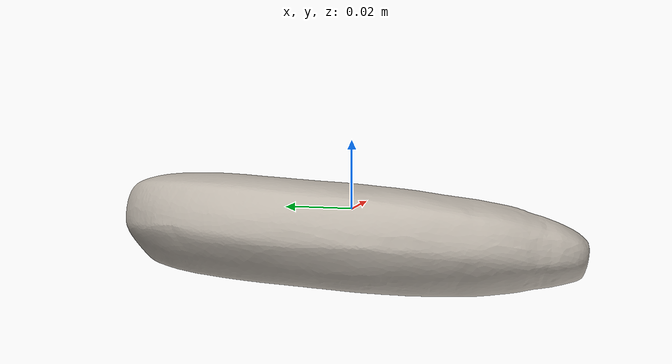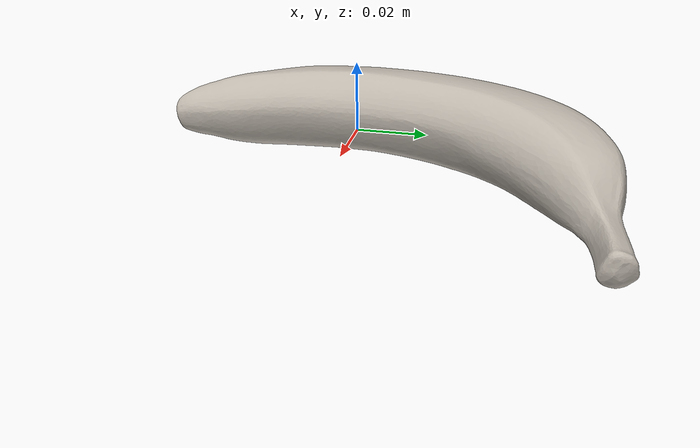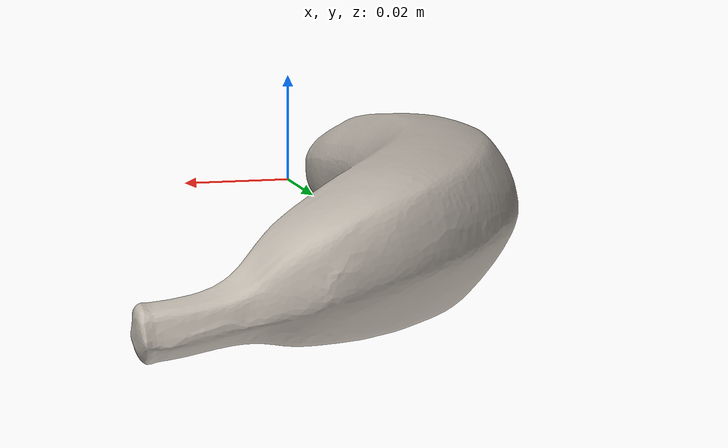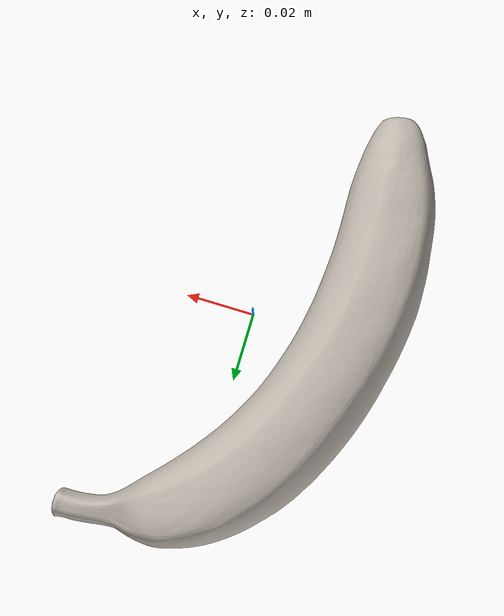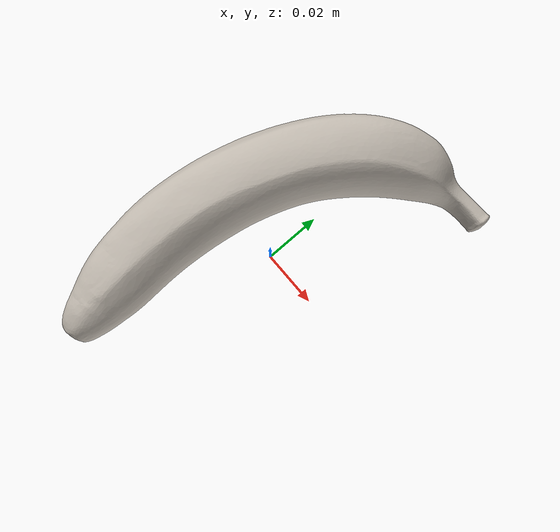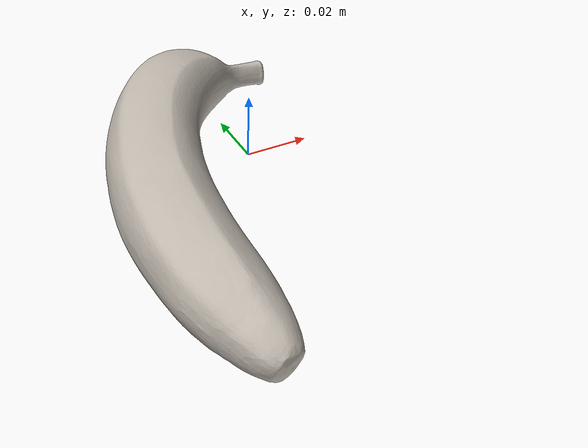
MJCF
<mujoco model="bread">
  <asset>
    <mesh file="nontextured.stl" name="obj_mesh" scale="0.8 0.8 0.8"/>
    <texture file="../../../../../textures/bread.png" type="2d" name="tex-bread" />
    <material name="bread" reflectance="0.7" texrepeat="15 15" texture="tex-bread" texuniform="true"/>
  </asset>
  <worldbody>
    <body>
      <body name="collision">
        <geom pos="-0.011476000000000004 0.007343500000000003 -0.017963" mesh="obj_mesh" type="mesh" solimp="0.998 0.998 0.001" solref="0.001 1" density="50" friction="0.95 0.3 0.1"  material="bread" group="1" condim="4"/>
      </body>
      <body name="visual">
        <geom pos="-0.011476000000000004 0.007343500000000003 -0.017963" mesh="obj_mesh" type="mesh" material="bread"  conaffinity="0" contype="0"  group="0" mass="0.0001"/>
        <geom pos="-0.011476000000000004 0.007343500000000003 -0.017963" mesh="obj_mesh" type="mesh" material="bread"  conaffinity="0" contype="0"  group="1" mass="0.0001"/>
      </body>
      <site rgba="0 0 0 0" size="0.005" pos="0 0 -0.018369999999999997" name="bottom_site"/>
      <site rgba="0 0 0 0" size="0.005" pos="0 0 0.018369999999999997" name="top_site"/>
      <site rgba="0 0 0 0" size="0.005" pos="0.054471000000000006 0.0892235 0.018369999999999997" name="horizontal_radius_site"/>
    </body>
  </worldbody>
</mujoco>
